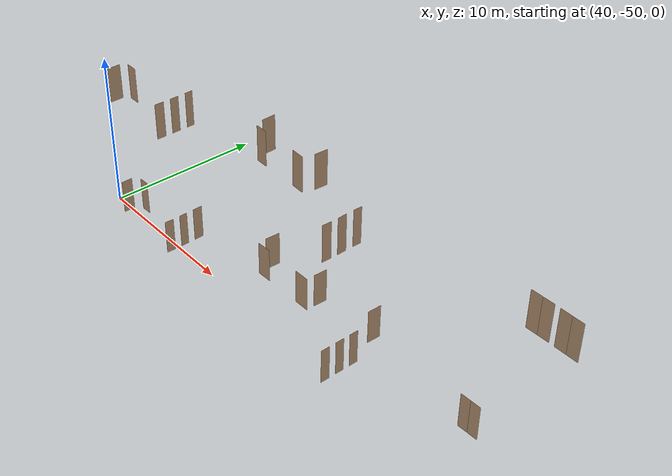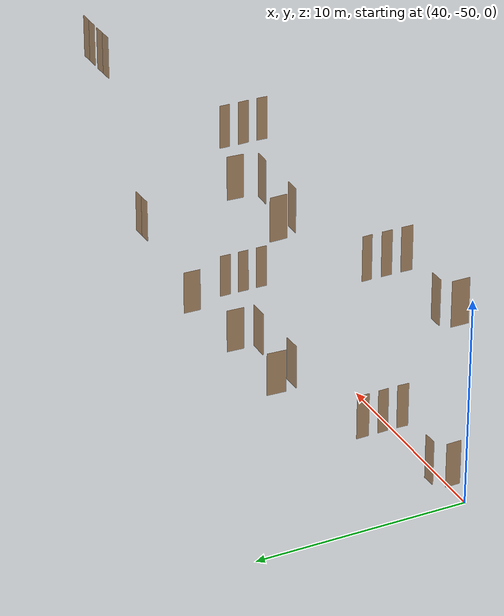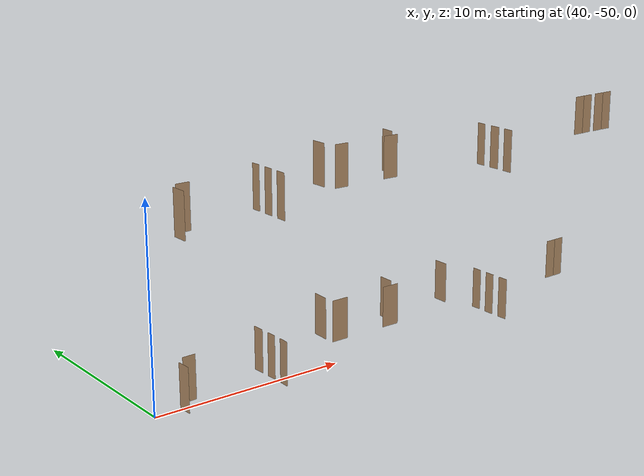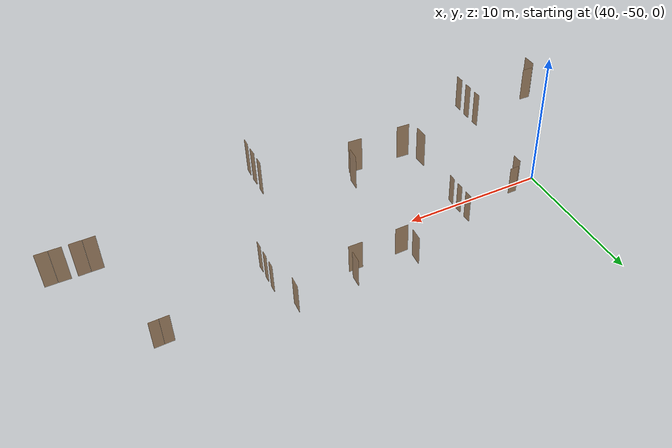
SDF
<sdf version="1.7">
 <world name="sim_world">
  <model name="TD1004CA">
   <pose>41.418329006971035 -50.19107119581413 0.0 0 0 1.5993775933365804</pose>
   <link name="right">
    <pose>0 0 1.11 0 0 0</pose>
    <visual name="right_visual">
     <geometry><box><size>0.7180729002156033 0.03 2.2</size></box></geometry>
     <material>
      <ambient>0.5 0.25 0 0.6</ambient>
      <diffuse>0.5 0.25 0 0.6</diffuse>
      <pbr><metal><metalness>0.0</metalness></metal></pbr>
     </material>
    </visual>
    <collision name="right_collision">
     <geometry><box><size>0.7180729002156033 0.03 2.2</size></box></geometry>
     <surface><contact><collide_bitmask>0x02</collide_bitmask></contact></surface>
    </collision>
    <inertial>
     <mass>50.0</mass>
     <inertia><ixx>20.17041666666667</ixx><iyy>22.315119541766872</iyy><izz>2.1522028751001994</izz></inertia>
    </inertial>
   </link>
   <joint name="right_joint" type="revolute">
    <parent>world</parent>
    <child>right</child>
    <axis><xyz>0 0 1</xyz><limit><lower>0</lower><upper>1.57</upper></limit></axis>
    <pose>0.36403645010780167 0 0 0 0 0</pose>
   </joint>
   <plugin name="register_component" filename="libregister_component.so">
    <component name="Door">
     <v_max_door>0.5</v_max_door>
     <a_max_door>0.3</a_max_door>
     <a_nom_door>0.15</a_nom_door>
     <dx_min_door>0.01</dx_min_door>
     <f_max_door>500.0</f_max_door>
     <ros_interface>true</ros_interface>
     <door name="TD1004CA" type="SwingDoor" left_joint_name="empty_joint" right_joint_name="right_joint"/>
    </component>
   </plugin>
  </model>
  <model name="TD1003CI">
   <pose>42.161714970803274 -49.42168282745601 0.0 0 0 -3.1108152612975006</pose>
   <link name="right">
    <pose>0 0 1.11 0 0 0</pose>
    <visual name="right_visual">
     <geometry><box><size>0.6661358327263901 0.03 2.2</size></box></geometry>
     <material>
      <ambient>0.5 0.25 0 0.6</ambient>
      <diffuse>0.5 0.25 0 0.6</diffuse>
      <pbr><metal><metalness>0.0</metalness></metal></pbr>
     </material>
    </visual>
    <collision name="right_collision">
     <geometry><box><size>0.6661358327263901 0.03 2.2</size></box></geometry>
     <surface><contact><collide_bitmask>0x02</collide_bitmask></contact></surface>
    </collision>
    <inertial>
     <mass>50.0</mass>
     <inertia><ixx>20.17041666666667</ixx><iyy>22.015570615175342</iyy><izz>1.8526539485086717</izz></inertia>
    </inertial>
   </link>
   <joint name="right_joint" type="revolute">
    <parent>world</parent>
    <child>right</child>
    <axis><xyz>0 0 1</xyz><limit><lower>0</lower><upper>1.57</upper></limit></axis>
    <pose>0.33806791636319505 0 0 0 0 0</pose>
   </joint>
   <plugin name="register_component" filename="libregister_component.so">
    <component name="Door">
     <v_max_door>0.5</v_max_door>
     <a_max_door>0.3</a_max_door>
     <a_nom_door>0.15</a_nom_door>
     <dx_min_door>0.01</dx_min_door>
     <f_max_door>500.0</f_max_door>
     <ros_interface>true</ros_interface>
     <door name="TD1003CI" type="SwingDoor" left_joint_name="empty_joint" right_joint_name="right_joint"/>
    </component>
   </plugin>
  </model>
  <model name="bano02">
   <pose>46.556525343689856 -48.4981205128844 0.0 0 0 1.5918249008363818</pose>
   <link name="right">
    <pose>0 0 1.11 0 0 0</pose>
    <visual name="right_visual">
     <geometry><box><size>0.6101771898056049 0.03 2.2</size></box></geometry>
     <material>
      <ambient>0.5 0.25 0 0.6</ambient>
      <diffuse>0.5 0.25 0 0.6</diffuse>
      <pbr><metal><metalness>0.0</metalness></metal></pbr>
     </material>
    </visual>
    <collision name="right_collision">
     <geometry><box><size>0.6101771898056049 0.03 2.2</size></box></geometry>
     <surface><contact><collide_bitmask>0x02</collide_bitmask></contact></surface>
    </collision>
    <inertial>
     <mass>50.0</mass>
     <inertia><ixx>20.17041666666667</ixx><iyy>21.717984178996108</iyy><izz>1.5550675123294382</izz></inertia>
    </inertial>
   </link>
   <joint name="right_joint" type="revolute">
    <parent>world</parent>
    <child>right</child>
    <axis><xyz>0 0 -1</xyz><limit><lower>0</lower><upper>1.57</upper></limit></axis>
    <pose>0.31008859490280244 0 0 0 0 0</pose>
   </joint>
   <plugin name="register_component" filename="libregister_component.so">
    <component name="Door">
     <v_max_door>0.5</v_max_door>
     <a_max_door>0.3</a_max_door>
     <a_nom_door>0.15</a_nom_door>
     <dx_min_door>0.01</dx_min_door>
     <f_max_door>500.0</f_max_door>
     <ros_interface>true</ros_interface>
     <door name="bano02" type="SwingDoor" left_joint_name="empty_joint" right_joint_name="right_joint"/>
    </component>
   </plugin>
  </model>
  <model name="bano03">
   <pose>46.57414458197455 -49.527454369388025 0.0 0 0 1.6131373529821114</pose>
   <link name="right">
    <pose>0 0 1.11 0 0 0</pose>
    <visual name="right_visual">
     <geometry><box><size>0.5144235144770443 0.03 2.2</size></box></geometry>
     <material>
      <ambient>0.5 0.25 0 0.6</ambient>
      <diffuse>0.5 0.25 0 0.6</diffuse>
      <pbr><metal><metalness>0.0</metalness></metal></pbr>
     </material>
    </visual>
    <collision name="right_collision">
     <geometry><box><size>0.5144235144770443 0.03 2.2</size></box></geometry>
     <surface><contact><collide_bitmask>0x02</collide_bitmask></contact></surface>
    </collision>
    <inertial>
     <mass>50.0</mass>
     <inertia><ixx>20.17041666666667</ixx><iyy>21.269298134362145</iyy><izz>1.1063814676954742</izz></inertia>
    </inertial>
   </link>
   <joint name="right_joint" type="revolute">
    <parent>world</parent>
    <child>right</child>
    <axis><xyz>0 0 -1</xyz><limit><lower>0</lower><upper>1.57</upper></limit></axis>
    <pose>0.26221175723852214 0 0 0 0 0</pose>
   </joint>
   <plugin name="register_component" filename="libregister_component.so">
    <component name="Door">
     <v_max_door>0.5</v_max_door>
     <a_max_door>0.3</a_max_door>
     <a_nom_door>0.15</a_nom_door>
     <dx_min_door>0.01</dx_min_door>
     <f_max_door>500.0</f_max_door>
     <ros_interface>true</ros_interface>
     <door name="bano03" type="SwingDoor" left_joint_name="empty_joint" right_joint_name="right_joint"/>
    </component>
   </plugin>
  </model>
  <model name="bano04">
   <pose>46.571922537910616 -50.515388627145 0.0 0 0 1.5235857714449361</pose>
   <link name="right">
    <pose>0 0 1.11 0 0 0</pose>
    <visual name="right_visual">
     <geometry><box><size>0.5545344152907058 0.03 2.2</size></box></geometry>
     <material>
      <ambient>0.5 0.25 0 0.6</ambient>
      <diffuse>0.5 0.25 0 0.6</diffuse>
      <pbr><metal><metalness>0.0</metalness></metal></pbr>
     </material>
    </visual>
    <collision name="right_collision">
     <geometry><box><size>0.5545344152907058 0.03 2.2</size></box></geometry>
     <surface><contact><collide_bitmask>0x02</collide_bitmask></contact></surface>
    </collision>
    <inertial>
     <mass>50.0</mass>
     <inertia><ixx>20.17041666666667</ixx><iyy>21.44795174059086</iyy><izz>1.2850350739241876</izz></inertia>
    </inertial>
   </link>
   <joint name="right_joint" type="revolute">
    <parent>world</parent>
    <child>right</child>
    <axis><xyz>0 0 -1</xyz><limit><lower>0</lower><upper>1.57</upper></limit></axis>
    <pose>0.2822672076453529 0 0 0 0 0</pose>
   </joint>
   <plugin name="register_component" filename="libregister_component.so">
    <component name="Door">
     <v_max_door>0.5</v_max_door>
     <a_max_door>0.3</a_max_door>
     <a_nom_door>0.15</a_nom_door>
     <dx_min_door>0.01</dx_min_door>
     <f_max_door>500.0</f_max_door>
     <ros_interface>true</ros_interface>
     <door name="bano04" type="SwingDoor" left_joint_name="empty_joint" right_joint_name="right_joint"/>
    </component>
   </plugin>
  </model>
  <model name="bano05">
   <pose>52.06670083466635 -47.72443394818039 0.0 0 0 -3.1200870272772754</pose>
   <link name="right">
    <pose>0 0 1.11 0 0 0</pose>
    <visual name="right_visual">
     <geometry><box><size>0.9377301620501713 0.03 2.2</size></box></geometry>
     <material>
      <ambient>0.5 0.25 0 0.6</ambient>
      <diffuse>0.5 0.25 0 0.6</diffuse>
      <pbr><metal><metalness>0.0</metalness></metal></pbr>
     </material>
    </visual>
    <collision name="right_collision">
     <geometry><box><size>0.9377301620501713 0.03 2.2</size></box></geometry>
     <surface><contact><collide_bitmask>0x02</collide_bitmask></contact></surface>
    </collision>
    <inertial>
     <mass>50.0</mass>
     <inertia><ixx>20.17041666666667</ixx><iyy>23.830574403411006</iyy><izz>3.6676577367443364</izz></inertia>
    </inertial>
   </link>
   <joint name="right_joint" type="revolute">
    <parent>world</parent>
    <child>right</child>
    <axis><xyz>0 0 -1</xyz><limit><lower>0</lower><upper>1.57</upper></limit></axis>
    <pose>0.4738650810250857 0 0 0 0 0</pose>
   </joint>
   <plugin name="register_component" filename="libregister_component.so">
    <component name="Door">
     <v_max_door>0.5</v_max_door>
     <a_max_door>0.3</a_max_door>
     <a_nom_door>0.15</a_nom_door>
     <dx_min_door>0.01</dx_min_door>
     <f_max_door>500.0</f_max_door>
     <ros_interface>true</ros_interface>
     <door name="bano05" type="SwingDoor" left_joint_name="empty_joint" right_joint_name="right_joint"/>
    </component>
   </plugin>
  </model>
  <model name="bano06">
   <pose>55.41423266186635 -47.68037463002387 0.0 0 0 0.0023663209530105163</pose>
   <link name="right">
    <pose>0 0 1.11 0 0 0</pose>
    <visual name="right_visual">
     <geometry><box><size>0.976455656863217 0.03 2.2</size></box></geometry>
     <material>
      <ambient>0.5 0.25 0 0.6</ambient>
      <diffuse>0.5 0.25 0 0.6</diffuse>
      <pbr><metal><metalness>0.0</metalness></metal></pbr>
     </material>
    </visual>
    <collision name="right_collision">
     <geometry><box><size>0.976455656863217 0.03 2.2</size></box></geometry>
     <surface><contact><collide_bitmask>0x02</collide_bitmask></contact></surface>
    </collision>
    <inertial>
     <mass>50.0</mass>
     <inertia><ixx>20.17041666666667</ixx><iyy>24.139440207584073</iyy><izz>3.9765235409174027</izz></inertia>
    </inertial>
   </link>
   <joint name="right_joint" type="revolute">
    <parent>world</parent>
    <child>right</child>
    <axis><xyz>0 0 1</xyz><limit><lower>0</lower><upper>1.57</upper></limit></axis>
    <pose>0.4932278284316085 0 0 0 0 0</pose>
   </joint>
   <plugin name="register_component" filename="libregister_component.so">
    <component name="Door">
     <v_max_door>0.5</v_max_door>
     <a_max_door>0.3</a_max_door>
     <a_nom_door>0.15</a_nom_door>
     <dx_min_door>0.01</dx_min_door>
     <f_max_door>500.0</f_max_door>
     <ros_interface>true</ros_interface>
     <door name="bano06" type="SwingDoor" left_joint_name="empty_joint" right_joint_name="right_joint"/>
    </component>
   </plugin>
  </model>
  <model name="TD0008CW">
   <pose>55.8966070053002 -46.72136061243229 0.0 0 0 1.5301015660938087</pose>
   <link name="right">
    <pose>0 0 1.11 0 0 0</pose>
    <visual name="right_visual">
     <geometry><box><size>0.8644361759346737 0.03 2.2</size></box></geometry>
     <material>
      <ambient>0.5 0.25 0 0.6</ambient>
      <diffuse>0.5 0.25 0 0.6</diffuse>
      <pbr><metal><metalness>0.0</metalness></metal></pbr>
     </material>
    </visual>
    <collision name="right_collision">
     <geometry><box><size>0.8644361759346737 0.03 2.2</size></box></geometry>
     <surface><contact><collide_bitmask>0x02</collide_bitmask></contact></surface>
    </collision>
    <inertial>
     <mass>50.0</mass>
     <inertia><ixx>20.17041666666667</ixx><iyy>23.280207926102346</iyy><izz>3.117291259435676</izz></inertia>
    </inertial>
   </link>
   <joint name="right_joint" type="revolute">
    <parent>world</parent>
    <child>right</child>
    <axis><xyz>0 0 1</xyz><limit><lower>0</lower><upper>1.57</upper></limit></axis>
    <pose>0.43721808796733685 0 0 0 0 0</pose>
   </joint>
   <plugin name="register_component" filename="libregister_component.so">
    <component name="Door">
     <v_max_door>0.5</v_max_door>
     <a_max_door>0.3</a_max_door>
     <a_nom_door>0.15</a_nom_door>
     <dx_min_door>0.01</dx_min_door>
     <f_max_door>500.0</f_max_door>
     <ros_interface>true</ros_interface>
     <door name="TD0008CW" type="SwingDoor" left_joint_name="empty_joint" right_joint_name="right_joint"/>
    </component>
   </plugin>
  </model>
  <model name="TD0007CW">
   <pose>51.58219422672672 -46.71441391912132 0.0 0 0 1.5172743729555838</pose>
   <link name="right">
    <pose>0 0 1.11 0 0 0</pose>
    <visual name="right_visual">
     <geometry><box><size>0.9398812216442772 0.03 2.2</size></box></geometry>
     <material>
      <ambient>0.5 0.25 0 0.6</ambient>
      <diffuse>0.5 0.25 0 0.6</diffuse>
      <pbr><metal><metalness>0.0</metalness></metal></pbr>
     </material>
    </visual>
    <collision name="right_collision">
     <geometry><box><size>0.9398812216442772 0.03 2.2</size></box></geometry>
     <surface><contact><collide_bitmask>0x02</collide_bitmask></contact></surface>
    </collision>
    <inertial>
     <mass>50.0</mass>
     <inertia><ixx>20.17041666666667</ixx><iyy>23.847402961664752</iyy><izz>3.6844862949980794</izz></inertia>
    </inertial>
   </link>
   <joint name="right_joint" type="revolute">
    <parent>world</parent>
    <child>right</child>
    <axis><xyz>0 0 -1</xyz><limit><lower>0</lower><upper>1.57</upper></limit></axis>
    <pose>0.4749406108221386 0 0 0 0 0</pose>
   </joint>
   <plugin name="register_component" filename="libregister_component.so">
    <component name="Door">
     <v_max_door>0.5</v_max_door>
     <a_max_door>0.3</a_max_door>
     <a_nom_door>0.15</a_nom_door>
     <dx_min_door>0.01</dx_min_door>
     <f_max_door>500.0</f_max_door>
     <ros_interface>true</ros_interface>
     <door name="TD0007CW" type="SwingDoor" left_joint_name="empty_joint" right_joint_name="right_joint"/>
    </component>
   </plugin>
  </model>
  <model name="bano07">
   <pose>60.06898852289842 -46.43233776989466 0.0 0 0 1.54727733475389</pose>
   <link name="right">
    <pose>0 0 1.11 0 0 0</pose>
    <visual name="right_visual">
     <geometry><box><size>0.8585207486559601 0.03 2.2</size></box></geometry>
     <material>
      <ambient>0.5 0.25 0 0.6</ambient>
      <diffuse>0.5 0.25 0 0.6</diffuse>
      <pbr><metal><metalness>0.0</metalness></metal></pbr>
     </material>
    </visual>
    <collision name="right_collision">
     <geometry><box><size>0.8585207486559601 0.03 2.2</size></box></geometry>
     <surface><contact><collide_bitmask>0x02</collide_bitmask></contact></surface>
    </collision>
    <inertial>
     <mass>50.0</mass>
     <inertia><ixx>20.17041666666667</ixx><iyy>23.237741149469965</iyy><izz>3.0748244828032925</izz></inertia>
    </inertial>
   </link>
   <joint name="right_joint" type="revolute">
    <parent>world</parent>
    <child>right</child>
    <axis><xyz>0 0 1</xyz><limit><lower>0</lower><upper>1.57</upper></limit></axis>
    <pose>0.43426037432798004 0 0 0 0 0</pose>
   </joint>
   <plugin name="register_component" filename="libregister_component.so">
    <component name="Door">
     <v_max_door>0.5</v_max_door>
     <a_max_door>0.3</a_max_door>
     <a_nom_door>0.15</a_nom_door>
     <dx_min_door>0.01</dx_min_door>
     <f_max_door>500.0</f_max_door>
     <ros_interface>true</ros_interface>
     <door name="bano07" type="SwingDoor" left_joint_name="empty_joint" right_joint_name="right_joint"/>
    </component>
   </plugin>
  </model>
  <model name="bano08">
   <pose>60.78976126052451 -48.53715217578514 0.0 0 0 1.5717737241623335</pose>
   <link name="right">
    <pose>0 0 1.11 0 0 0</pose>
    <visual name="right_visual">
     <geometry><box><size>0.5411345257741597 0.03 2.2</size></box></geometry>
     <material>
      <ambient>0.5 0.25 0 0.6</ambient>
      <diffuse>0.5 0.25 0 0.6</diffuse>
      <pbr><metal><metalness>0.0</metalness></metal></pbr>
     </material>
    </visual>
    <collision name="right_collision">
     <geometry><box><size>0.5411345257741597 0.03 2.2</size></box></geometry>
     <surface><contact><collide_bitmask>0x02</collide_bitmask></contact></surface>
    </collision>
    <inertial>
     <mass>50.0</mass>
     <inertia><ixx>20.17041666666667</ixx><iyy>21.386777395770107</iyy><izz>1.2238607291034362</izz></inertia>
    </inertial>
   </link>
   <joint name="right_joint" type="revolute">
    <parent>world</parent>
    <child>right</child>
    <axis><xyz>0 0 1</xyz><limit><lower>0</lower><upper>1.57</upper></limit></axis>
    <pose>0.27556726288707983 0 0 0 0 0</pose>
   </joint>
   <plugin name="register_component" filename="libregister_component.so">
    <component name="Door">
     <v_max_door>0.5</v_max_door>
     <a_max_door>0.3</a_max_door>
     <a_nom_door>0.15</a_nom_door>
     <dx_min_door>0.01</dx_min_door>
     <f_max_door>500.0</f_max_door>
     <ros_interface>true</ros_interface>
     <door name="bano08" type="SwingDoor" left_joint_name="empty_joint" right_joint_name="right_joint"/>
    </component>
   </plugin>
  </model>
  <model name="bano09">
   <pose>60.79003059919892 -49.49870246589414 0.0 0 0 1.5707963267948966</pose>
   <link name="right">
    <pose>0 0 1.11 0 0 0</pose>
    <visual name="right_visual">
     <geometry><box><size>0.5286773488315057 0.03 2.2</size></box></geometry>
     <material>
      <ambient>0.5 0.25 0 0.6</ambient>
      <diffuse>0.5 0.25 0 0.6</diffuse>
      <pbr><metal><metalness>0.0</metalness></metal></pbr>
     </material>
    </visual>
    <collision name="right_collision">
     <geometry><box><size>0.5286773488315057 0.03 2.2</size></box></geometry>
     <surface><contact><collide_bitmask>0x02</collide_bitmask></contact></surface>
    </collision>
    <inertial>
     <mass>50.0</mass>
     <inertia><ixx>20.17041666666667</ixx><iyy>21.331248913197964</iyy><izz>1.16833224653129</izz></inertia>
    </inertial>
   </link>
   <joint name="right_joint" type="revolute">
    <parent>world</parent>
    <child>right</child>
    <axis><xyz>0 0 1</xyz><limit><lower>0</lower><upper>1.57</upper></limit></axis>
    <pose>0.2693386744157529 0 0 0 0 0</pose>
   </joint>
   <plugin name="register_component" filename="libregister_component.so">
    <component name="Door">
     <v_max_door>0.5</v_max_door>
     <a_max_door>0.3</a_max_door>
     <a_nom_door>0.15</a_nom_door>
     <dx_min_door>0.01</dx_min_door>
     <f_max_door>500.0</f_max_door>
     <ros_interface>true</ros_interface>
     <door name="bano09" type="SwingDoor" left_joint_name="empty_joint" right_joint_name="right_joint"/>
    </component>
   </plugin>
  </model>
  <model name="bano010">
   <pose>60.79214041881518 -50.483516884005795 0.0 0 0 1.5782784764305897</pose>
   <link name="right">
    <pose>0 0 1.11 0 0 0</pose>
    <visual name="right_visual">
     <geometry><box><size>0.553966080507234 0.03 2.2</size></box></geometry>
     <material>
      <ambient>0.5 0.25 0 0.6</ambient>
      <diffuse>0.5 0.25 0 0.6</diffuse>
      <pbr><metal><metalness>0.0</metalness></metal></pbr>
     </material>
    </visual>
    <collision name="right_collision">
     <geometry><box><size>0.553966080507234 0.03 2.2</size></box></geometry>
     <surface><contact><collide_bitmask>0x02</collide_bitmask></contact></surface>
    </collision>
    <inertial>
     <mass>50.0</mass>
     <inertia><ixx>20.17041666666667</ixx><iyy>21.44532674313562</iyy><izz>1.2824100764689468</izz></inertia>
    </inertial>
   </link>
   <joint name="right_joint" type="revolute">
    <parent>world</parent>
    <child>right</child>
    <axis><xyz>0 0 1</xyz><limit><lower>0</lower><upper>1.57</upper></limit></axis>
    <pose>0.281983040253617 0 0 0 0 0</pose>
   </joint>
   <plugin name="register_component" filename="libregister_component.so">
    <component name="Door">
     <v_max_door>0.5</v_max_door>
     <a_max_door>0.3</a_max_door>
     <a_nom_door>0.15</a_nom_door>
     <dx_min_door>0.01</dx_min_door>
     <f_max_door>500.0</f_max_door>
     <ros_interface>true</ros_interface>
     <door name="bano010" type="SwingDoor" left_joint_name="empty_joint" right_joint_name="right_joint"/>
    </component>
   </plugin>
  </model>
  <model name="TD0001EC1">
   <pose>68.0815447480926 -47.3850784408613 0.0 0 0 0.026534896190855972</pose>
   <link name="right">
    <pose>0.32252315344996946 0 1.11 0 0 0</pose>
    <visual name="right_visual">
     <geometry><box><size>0.6350463068999389 0.03 2.2</size></box></geometry>
     <material>
      <ambient>0.5 0.25 0 0.6</ambient>
      <diffuse>0.5 0.25 0 0.6</diffuse>
      <pbr><metal><metalness>0.0</metalness></metal></pbr>
     </material>
    </visual>
    <collision name="right_collision">
     <geometry><box><size>0.6350463068999389 0.03 2.2</size></box></geometry>
     <surface><contact><collide_bitmask>0x02</collide_bitmask></contact></surface>
    </collision>
    <inertial>
     <mass>50.0</mass>
     <inertia><ixx>20.17041666666667</ixx><iyy>21.847015882946888</iyy><izz>1.6840992162802142</izz></inertia>
    </inertial>
   </link>
   <joint name="right_joint" type="revolute">
    <parent>world</parent>
    <child>right</child>
    <axis><xyz>0 0 -1</xyz><limit><lower>0</lower><upper>1.57</upper></limit></axis>
    <pose>0.32252315344996946 0 0 0 0 0</pose>
   </joint>
   <link name="left">
    <pose>-0.32252315344996946 0 1.11 0 0 0</pose>
    <visual name="left_visual">
     <geometry><box><size>0.6350463068999389 0.03 2.2</size></box></geometry>
     <material>
      <ambient>0.5 0.25 0 0.6</ambient>
      <diffuse>0.5 0.25 0 0.6</diffuse>
      <pbr><metal><metalness>0.0</metalness></metal></pbr>
     </material>
    </visual>
    <collision name="left_collision">
     <geometry><box><size>0.6350463068999389 0.03 2.2</size></box></geometry>
     <surface><contact><collide_bitmask>0x02</collide_bitmask></contact></surface>
    </collision>
    <inertial>
     <mass>50.0</mass>
     <inertia><ixx>20.17041666666667</ixx><iyy>21.847015882946888</iyy><izz>1.6840992162802142</izz></inertia>
    </inertial>
   </link>
   <joint name="left_joint" type="revolute">
    <parent>world</parent>
    <child>left</child>
    <axis><xyz>0 0 -1</xyz><limit><lower>-1.57</lower><upper>0</upper></limit></axis>
    <pose>-0.32252315344996946 0 0 0 0 0</pose>
   </joint>
   <plugin name="register_component" filename="libregister_component.so">
    <component name="Door">
     <v_max_door>0.5</v_max_door>
     <a_max_door>0.3</a_max_door>
     <a_nom_door>0.15</a_nom_door>
     <dx_min_door>0.01</dx_min_door>
     <f_max_door>500.0</f_max_door>
     <ros_interface>true</ros_interface>
     <door name="TD0001EC1" type="DoubleSwingDoor" left_joint_name="left_joint" right_joint_name="right_joint"/>
    </component>
   </plugin>
  </model>
  <model name="TD1116CT">
   <pose>42.13165229551727 -49.469770444557135 8.0 0 0 -3.1414135882629983</pose>
   <link name="right">
    <pose>0 0 1.11 0 0 0</pose>
    <visual name="right_visual">
     <geometry><box><size>0.7019451403396002 0.03 2.2</size></box></geometry>
     <material>
      <ambient>0.5 0.25 0 0.6</ambient>
      <diffuse>0.5 0.25 0 0.6</diffuse>
      <pbr><metal><metalness>0.0</metalness></metal></pbr>
     </material>
    </visual>
    <collision name="right_collision">
     <geometry><box><size>0.7019451403396002 0.03 2.2</size></box></geometry>
     <surface><contact><collide_bitmask>0x02</collide_bitmask></contact></surface>
    </collision>
    <inertial>
     <mass>50.0</mass>
     <inertia><ixx>20.17041666666667</ixx><iyy>22.21969575019326</iyy><izz>2.056779083526588</izz></inertia>
    </inertial>
   </link>
   <joint name="right_joint" type="revolute">
    <parent>world</parent>
    <child>right</child>
    <axis><xyz>0 0 1</xyz><limit><lower>0</lower><upper>1.57</upper></limit></axis>
    <pose>0.3559725701698001 0 0 0 0 0</pose>
   </joint>
   <plugin name="register_component" filename="libregister_component.so">
    <component name="Door">
     <v_max_door>0.5</v_max_door>
     <a_max_door>0.3</a_max_door>
     <a_nom_door>0.15</a_nom_door>
     <dx_min_door>0.01</dx_min_door>
     <f_max_door>500.0</f_max_door>
     <ros_interface>true</ros_interface>
     <door name="TD1116CT" type="SwingDoor" left_joint_name="empty_joint" right_joint_name="right_joint"/>
    </component>
   </plugin>
  </model>
  <model name="TD0114CW">
   <pose>51.50515808954793 -46.74820920088596 8.0 0 0 1.6056425163225825</pose>
   <link name="right">
    <pose>0 0 1.11 0 0 0</pose>
    <visual name="right_visual">
     <geometry><box><size>0.8454856513248106 0.03 2.2</size></box></geometry>
     <material>
      <ambient>0.5 0.25 0 0.6</ambient>
      <diffuse>0.5 0.25 0 0.6</diffuse>
      <pbr><metal><metalness>0.0</metalness></metal></pbr>
     </material>
    </visual>
    <collision name="right_collision">
     <geometry><box><size>0.8454856513248106 0.03 2.2</size></box></geometry>
     <surface><contact><collide_bitmask>0x02</collide_bitmask></contact></surface>
    </collision>
    <inertial>
     <mass>50.0</mass>
     <inertia><ixx>20.17041666666667</ixx><iyy>23.145191610817253</iyy><izz>2.9822749441505803</izz></inertia>
    </inertial>
   </link>
   <joint name="right_joint" type="revolute">
    <parent>world</parent>
    <child>right</child>
    <axis><xyz>0 0 -1</xyz><limit><lower>0</lower><upper>1.57</upper></limit></axis>
    <pose>0.4277428256624053 0 0 0 0 0</pose>
   </joint>
   <plugin name="register_component" filename="libregister_component.so">
    <component name="Door">
     <v_max_door>0.5</v_max_door>
     <a_max_door>0.3</a_max_door>
     <a_nom_door>0.15</a_nom_door>
     <dx_min_door>0.01</dx_min_door>
     <f_max_door>500.0</f_max_door>
     <ros_interface>true</ros_interface>
     <door name="TD0114CW" type="SwingDoor" left_joint_name="empty_joint" right_joint_name="right_joint"/>
    </component>
   </plugin>
  </model>
  <model name="bano2">
   <pose>46.56346860594233 -48.55060622142908 8.0 0 0 1.6194787439386857</pose>
   <link name="right">
    <pose>0 0 1.11 0 0 0</pose>
    <visual name="right_visual">
     <geometry><box><size>0.47147375781130063 0.03 2.2</size></box></geometry>
     <material>
      <ambient>0.5 0.25 0 0.6</ambient>
      <diffuse>0.5 0.25 0 0.6</diffuse>
      <pbr><metal><metalness>0.0</metalness></metal></pbr>
     </material>
    </visual>
    <collision name="right_collision">
     <geometry><box><size>0.47147375781130063 0.03 2.2</size></box></geometry>
     <surface><contact><collide_bitmask>0x02</collide_bitmask></contact></surface>
    </collision>
    <inertial>
     <mass>50.0</mass>
     <inertia><ixx>20.17041666666667</ixx><iyy>21.092864601269625</iyy><izz>0.9299479346029541</izz></inertia>
    </inertial>
   </link>
   <joint name="right_joint" type="revolute">
    <parent>world</parent>
    <child>right</child>
    <axis><xyz>0 0 -1</xyz><limit><lower>0</lower><upper>1.57</upper></limit></axis>
    <pose>0.24073687890565032 0 0 0 0 0</pose>
   </joint>
   <plugin name="register_component" filename="libregister_component.so">
    <component name="Door">
     <v_max_door>0.5</v_max_door>
     <a_max_door>0.3</a_max_door>
     <a_nom_door>0.15</a_nom_door>
     <dx_min_door>0.01</dx_min_door>
     <f_max_door>500.0</f_max_door>
     <ros_interface>true</ros_interface>
     <door name="bano2" type="SwingDoor" left_joint_name="empty_joint" right_joint_name="right_joint"/>
    </component>
   </plugin>
  </model>
  <model name="bano3">
   <pose>46.57076823740256 -49.51671839086791 8.0 0 0 1.5714524499396092</pose>
   <link name="right">
    <pose>0 0 1.11 0 0 0</pose>
    <visual name="right_visual">
     <geometry><box><size>0.5075620440748119 0.03 2.2</size></box></geometry>
     <material>
      <ambient>0.5 0.25 0 0.6</ambient>
      <diffuse>0.5 0.25 0 0.6</diffuse>
      <pbr><metal><metalness>0.0</metalness></metal></pbr>
     </material>
    </visual>
    <collision name="right_collision">
     <geometry><box><size>0.5075620440748119 0.03 2.2</size></box></geometry>
     <surface><contact><collide_bitmask>0x02</collide_bitmask></contact></surface>
    </collision>
    <inertial>
     <mass>50.0</mass>
     <inertia><ixx>20.17041666666667</ixx><iyy>21.240080119105844</iyy><izz>1.077163452439172</izz></inertia>
    </inertial>
   </link>
   <joint name="right_joint" type="revolute">
    <parent>world</parent>
    <child>right</child>
    <axis><xyz>0 0 -1</xyz><limit><lower>0</lower><upper>1.57</upper></limit></axis>
    <pose>0.25878102203740594 0 0 0 0 0</pose>
   </joint>
   <plugin name="register_component" filename="libregister_component.so">
    <component name="Door">
     <v_max_door>0.5</v_max_door>
     <a_max_door>0.3</a_max_door>
     <a_nom_door>0.15</a_nom_door>
     <dx_min_door>0.01</dx_min_door>
     <f_max_door>500.0</f_max_door>
     <ros_interface>true</ros_interface>
     <door name="bano3" type="SwingDoor" left_joint_name="empty_joint" right_joint_name="right_joint"/>
    </component>
   </plugin>
  </model>
  <model name="bano4">
   <pose>46.563481016345676 -50.50018400156114 8.0 0 0 1.557244461655424</pose>
   <link name="right">
    <pose>0 0 1.11 0 0 0</pose>
    <visual name="right_visual">
     <geometry><box><size>0.5556274960112053 0.03 2.2</size></box></geometry>
     <material>
      <ambient>0.5 0.25 0 0.6</ambient>
      <diffuse>0.5 0.25 0 0.6</diffuse>
      <pbr><metal><metalness>0.0</metalness></metal></pbr>
     </material>
    </visual>
    <collision name="right_collision">
     <geometry><box><size>0.5556274960112053 0.03 2.2</size></box></geometry>
     <surface><contact><collide_bitmask>0x02</collide_bitmask></contact></surface>
    </collision>
    <inertial>
     <mass>50.0</mass>
     <inertia><ixx>20.17041666666667</ixx><iyy>21.45300797634868</iyy><izz>1.2900913096820084</izz></inertia>
    </inertial>
   </link>
   <joint name="right_joint" type="revolute">
    <parent>world</parent>
    <child>right</child>
    <axis><xyz>0 0 -1</xyz><limit><lower>0</lower><upper>1.57</upper></limit></axis>
    <pose>0.28281374800560266 0 0 0 0 0</pose>
   </joint>
   <plugin name="register_component" filename="libregister_component.so">
    <component name="Door">
     <v_max_door>0.5</v_max_door>
     <a_max_door>0.3</a_max_door>
     <a_nom_door>0.15</a_nom_door>
     <dx_min_door>0.01</dx_min_door>
     <f_max_door>500.0</f_max_door>
     <ros_interface>true</ros_interface>
     <door name="bano4" type="SwingDoor" left_joint_name="empty_joint" right_joint_name="right_joint"/>
    </component>
   </plugin>
  </model>
  <model name="bano5">
   <pose>52.148068485913775 -47.74097451939845 8.0 0 0 3.1065786581625146</pose>
   <link name="right">
    <pose>0 0 1.11 0 0 0</pose>
    <visual name="right_visual">
     <geometry><box><size>0.7657234564264961 0.03 2.2</size></box></geometry>
     <material>
      <ambient>0.5 0.25 0 0.6</ambient>
      <diffuse>0.5 0.25 0 0.6</diffuse>
      <pbr><metal><metalness>0.0</metalness></metal></pbr>
     </material>
    </visual>
    <collision name="right_collision">
     <geometry><box><size>0.7657234564264961 0.03 2.2</size></box></geometry>
     <surface><contact><collide_bitmask>0x02</collide_bitmask></contact></surface>
    </collision>
    <inertial>
     <mass>50.0</mass>
     <inertia><ixx>20.17041666666667</ixx><iyy>22.60971838217392</iyy><izz>2.44680171550725</izz></inertia>
    </inertial>
   </link>
   <joint name="right_joint" type="revolute">
    <parent>world</parent>
    <child>right</child>
    <axis><xyz>0 0 -1</xyz><limit><lower>0</lower><upper>1.57</upper></limit></axis>
    <pose>0.38786172821324805 0 0 0 0 0</pose>
   </joint>
   <plugin name="register_component" filename="libregister_component.so">
    <component name="Door">
     <v_max_door>0.5</v_max_door>
     <a_max_door>0.3</a_max_door>
     <a_nom_door>0.15</a_nom_door>
     <dx_min_door>0.01</dx_min_door>
     <f_max_door>500.0</f_max_door>
     <ros_interface>true</ros_interface>
     <door name="bano5" type="SwingDoor" left_joint_name="empty_joint" right_joint_name="right_joint"/>
    </component>
   </plugin>
  </model>
  <model name="bano6">
   <pose>55.234940433910175 -47.778894369654296 8.0 0 0 -0.04549059902802838</pose>
   <link name="right">
    <pose>0 0 1.11 0 0 0</pose>
    <visual name="right_visual">
     <geometry><box><size>0.8297533818517685 0.03 2.2</size></box></geometry>
     <material>
      <ambient>0.5 0.25 0 0.6</ambient>
      <diffuse>0.5 0.25 0 0.6</diffuse>
      <pbr><metal><metalness>0.0</metalness></metal></pbr>
     </material>
    </visual>
    <collision name="right_collision">
     <geometry><box><size>0.8297533818517685 0.03 2.2</size></box></geometry>
     <surface><contact><collide_bitmask>0x02</collide_bitmask></contact></surface>
    </collision>
    <inertial>
     <mass>50.0</mass>
     <inertia><ixx>20.17041666666667</ixx><iyy>23.035377811226866</iyy><izz>2.8724611445601953</izz></inertia>
    </inertial>
   </link>
   <joint name="right_joint" type="revolute">
    <parent>world</parent>
    <child>right</child>
    <axis><xyz>0 0 1</xyz><limit><lower>0</lower><upper>1.57</upper></limit></axis>
    <pose>0.41987669092588426 0 0 0 0 0</pose>
   </joint>
   <plugin name="register_component" filename="libregister_component.so">
    <component name="Door">
     <v_max_door>0.5</v_max_door>
     <a_max_door>0.3</a_max_door>
     <a_nom_door>0.15</a_nom_door>
     <dx_min_door>0.01</dx_min_door>
     <f_max_door>500.0</f_max_door>
     <ros_interface>true</ros_interface>
     <door name="bano6" type="SwingDoor" left_joint_name="empty_joint" right_joint_name="right_joint"/>
    </component>
   </plugin>
  </model>
  <model name="TD0115CW">
   <pose>55.88847397362011 -46.73766025088821 8.0 0 0 1.5145458440551605</pose>
   <link name="right">
    <pose>0 0 1.11 0 0 0</pose>
    <visual name="right_visual">
     <geometry><box><size>0.8030795554057361 0.03 2.2</size></box></geometry>
     <material>
      <ambient>0.5 0.25 0 0.6</ambient>
      <diffuse>0.5 0.25 0 0.6</diffuse>
      <pbr><metal><metalness>0.0</metalness></metal></pbr>
     </material>
    </visual>
    <collision name="right_collision">
     <geometry><box><size>0.8030795554057361 0.03 2.2</size></box></geometry>
     <surface><contact><collide_bitmask>0x02</collide_bitmask></contact></surface>
    </collision>
    <inertial>
     <mass>50.0</mass>
     <inertia><ixx>20.17041666666667</ixx><iyy>22.853903217961147</iyy><izz>2.690986551294478</izz></inertia>
    </inertial>
   </link>
   <joint name="right_joint" type="revolute">
    <parent>world</parent>
    <child>right</child>
    <axis><xyz>0 0 1</xyz><limit><lower>0</lower><upper>1.57</upper></limit></axis>
    <pose>0.40653977770286803 0 0 0 0 0</pose>
   </joint>
   <plugin name="register_component" filename="libregister_component.so">
    <component name="Door">
     <v_max_door>0.5</v_max_door>
     <a_max_door>0.3</a_max_door>
     <a_nom_door>0.15</a_nom_door>
     <dx_min_door>0.01</dx_min_door>
     <f_max_door>500.0</f_max_door>
     <ros_interface>true</ros_interface>
     <door name="TD0115CW" type="SwingDoor" left_joint_name="empty_joint" right_joint_name="right_joint"/>
    </component>
   </plugin>
  </model>
  <model name="bano8">
   <pose>60.781529853885814 -48.5473083155301 8.0 0 0 1.564084700622381</pose>
   <link name="right">
    <pose>0 0 1.11 0 0 0</pose>
    <visual name="right_visual">
     <geometry><box><size>0.5014238975936707 0.03 2.2</size></box></geometry>
     <material>
      <ambient>0.5 0.25 0 0.6</ambient>
      <diffuse>0.5 0.25 0 0.6</diffuse>
      <pbr><metal><metalness>0.0</metalness></metal></pbr>
     </material>
    </visual>
    <collision name="right_collision">
     <geometry><box><size>0.5014238975936707 0.03 2.2</size></box></geometry>
     <surface><contact><collide_bitmask>0x02</collide_bitmask></contact></surface>
    </collision>
    <inertial>
     <mass>50.0</mass>
     <inertia><ixx>20.17041666666667</ixx><iyy>21.21427468782512</iyy><izz>1.0513580211584497</izz></inertia>
    </inertial>
   </link>
   <joint name="right_joint" type="revolute">
    <parent>world</parent>
    <child>right</child>
    <axis><xyz>0 0 1</xyz><limit><lower>0</lower><upper>1.57</upper></limit></axis>
    <pose>0.25571194879683534 0 0 0 0 0</pose>
   </joint>
   <plugin name="register_component" filename="libregister_component.so">
    <component name="Door">
     <v_max_door>0.5</v_max_door>
     <a_max_door>0.3</a_max_door>
     <a_nom_door>0.15</a_nom_door>
     <dx_min_door>0.01</dx_min_door>
     <f_max_door>500.0</f_max_door>
     <ros_interface>true</ros_interface>
     <door name="bano8" type="SwingDoor" left_joint_name="empty_joint" right_joint_name="right_joint"/>
    </component>
   </plugin>
  </model>
  <model name="bano9">
   <pose>60.7830405702094 -49.525576080478196 8.0 0 0 1.6080317512604094</pose>
   <link name="right">
    <pose>0 0 1.11 0 0 0</pose>
    <visual name="right_visual">
     <geometry><box><size>0.5401273478474014 0.03 2.2</size></box></geometry>
     <material>
      <ambient>0.5 0.25 0 0.6</ambient>
      <diffuse>0.5 0.25 0 0.6</diffuse>
      <pbr><metal><metalness>0.0</metalness></metal></pbr>
     </material>
    </visual>
    <collision name="right_collision">
     <geometry><box><size>0.5401273478474014 0.03 2.2</size></box></geometry>
     <surface><contact><collide_bitmask>0x02</collide_bitmask></contact></surface>
    </collision>
    <inertial>
     <mass>50.0</mass>
     <inertia><ixx>20.17041666666667</ixx><iyy>21.38223979955279</iyy><izz>1.2193231328861156</izz></inertia>
    </inertial>
   </link>
   <joint name="right_joint" type="revolute">
    <parent>world</parent>
    <child>right</child>
    <axis><xyz>0 0 1</xyz><limit><lower>0</lower><upper>1.57</upper></limit></axis>
    <pose>0.2750636739237007 0 0 0 0 0</pose>
   </joint>
   <plugin name="register_component" filename="libregister_component.so">
    <component name="Door">
     <v_max_door>0.5</v_max_door>
     <a_max_door>0.3</a_max_door>
     <a_nom_door>0.15</a_nom_door>
     <dx_min_door>0.01</dx_min_door>
     <f_max_door>500.0</f_max_door>
     <ros_interface>true</ros_interface>
     <door name="bano9" type="SwingDoor" left_joint_name="empty_joint" right_joint_name="right_joint"/>
    </component>
   </plugin>
  </model>
  <model name="bano10">
   <pose>60.77464856298866 -50.481522979988085 8.0 0 0 1.5423201626319034</pose>
   <link name="right">
    <pose>0 0 1.11 0 0 0</pose>
    <visual name="right_visual">
     <geometry><box><size>0.5360457845933009 0.03 2.2</size></box></geometry>
     <material>
      <ambient>0.5 0.25 0 0.6</ambient>
      <diffuse>0.5 0.25 0 0.6</diffuse>
      <pbr><metal><metalness>0.0</metalness></metal></pbr>
     </material>
    </visual>
    <collision name="right_collision">
     <geometry><box><size>0.5360457845933009 0.03 2.2</size></box></geometry>
     <surface><contact><collide_bitmask>0x02</collide_bitmask></contact></surface>
    </collision>
    <inertial>
     <mass>50.0</mass>
     <inertia><ixx>20.17041666666667</ixx><iyy>21.36393784658437</iyy><izz>1.2010211799176982</izz></inertia>
    </inertial>
   </link>
   <joint name="right_joint" type="revolute">
    <parent>world</parent>
    <child>right</child>
    <axis><xyz>0 0 1</xyz><limit><lower>0</lower><upper>1.57</upper></limit></axis>
    <pose>0.27302289229665044 0 0 0 0 0</pose>
   </joint>
   <plugin name="register_component" filename="libregister_component.so">
    <component name="Door">
     <v_max_door>0.5</v_max_door>
     <a_max_door>0.3</a_max_door>
     <a_nom_door>0.15</a_nom_door>
     <dx_min_door>0.01</dx_min_door>
     <f_max_door>500.0</f_max_door>
     <ros_interface>true</ros_interface>
     <door name="bano10" type="SwingDoor" left_joint_name="empty_joint" right_joint_name="right_joint"/>
    </component>
   </plugin>
  </model>
  <model name="TD0118CP2">
   <pose>72.41551607728127 -46.65071877677124 8.0 0 0 -0.0022488865674640916</pose>
   <link name="right">
    <pose>0.3351267501694839 0 1.11 0 0 0</pose>
    <visual name="right_visual">
     <geometry><box><size>0.6602535003389678 0.03 2.2</size></box></geometry>
     <material>
      <ambient>0.5 0.25 0 0.6</ambient>
      <diffuse>0.5 0.25 0 0.6</diffuse>
      <pbr><metal><metalness>0.0</metalness></metal></pbr>
     </material>
    </visual>
    <collision name="right_collision">
     <geometry><box><size>0.6602535003389678 0.03 2.2</size></box></geometry>
     <surface><contact><collide_bitmask>0x02</collide_bitmask></contact></surface>
    </collision>
    <inertial>
     <mass>50.0</mass>
     <inertia><ixx>20.17041666666667</ixx><iyy>21.983061186291085</iyy><izz>1.8201445196244141</izz></inertia>
    </inertial>
   </link>
   <joint name="right_joint" type="revolute">
    <parent>world</parent>
    <child>right</child>
    <axis><xyz>0 0 -1</xyz><limit><lower>0</lower><upper>1.57</upper></limit></axis>
    <pose>0.3351267501694839 0 0 0 0 0</pose>
   </joint>
   <link name="left">
    <pose>-0.3351267501694839 0 1.11 0 0 0</pose>
    <visual name="left_visual">
     <geometry><box><size>0.6602535003389678 0.03 2.2</size></box></geometry>
     <material>
      <ambient>0.5 0.25 0 0.6</ambient>
      <diffuse>0.5 0.25 0 0.6</diffuse>
      <pbr><metal><metalness>0.0</metalness></metal></pbr>
     </material>
    </visual>
    <collision name="left_collision">
     <geometry><box><size>0.6602535003389678 0.03 2.2</size></box></geometry>
     <surface><contact><collide_bitmask>0x02</collide_bitmask></contact></surface>
    </collision>
    <inertial>
     <mass>50.0</mass>
     <inertia><ixx>20.17041666666667</ixx><iyy>21.983061186291085</iyy><izz>1.8201445196244141</izz></inertia>
    </inertial>
   </link>
   <joint name="left_joint" type="revolute">
    <parent>world</parent>
    <child>left</child>
    <axis><xyz>0 0 -1</xyz><limit><lower>-1.57</lower><upper>0</upper></limit></axis>
    <pose>-0.3351267501694839 0 0 0 0 0</pose>
   </joint>
   <plugin name="register_component" filename="libregister_component.so">
    <component name="Door">
     <v_max_door>0.5</v_max_door>
     <a_max_door>0.3</a_max_door>
     <a_nom_door>0.15</a_nom_door>
     <dx_min_door>0.01</dx_min_door>
     <f_max_door>500.0</f_max_door>
     <ros_interface>true</ros_interface>
     <door name="TD0118CP2" type="DoubleSwingDoor" left_joint_name="left_joint" right_joint_name="right_joint"/>
    </component>
   </plugin>
  </model>
  <model name="TD0118CP1">
   <pose>70.76829959604194 -46.6575118798179 8.0 0 0 0.017164137838007427</pose>
   <link name="right">
    <pose>0.33436032065809285 0 1.11 0 0 0</pose>
    <visual name="right_visual">
     <geometry><box><size>0.6587206413161857 0.03 2.2</size></box></geometry>
     <material>
      <ambient>0.5 0.25 0 0.6</ambient>
      <diffuse>0.5 0.25 0 0.6</diffuse>
      <pbr><metal><metalness>0.0</metalness></metal></pbr>
     </material>
    </visual>
    <collision name="right_collision">
     <geometry><box><size>0.6587206413161857 0.03 2.2</size></box></geometry>
     <surface><contact><collide_bitmask>0x02</collide_bitmask></contact></surface>
    </collision>
    <inertial>
     <mass>50.0</mass>
     <inertia><ixx>20.17041666666667</ixx><iyy>21.974637013733368</iyy><izz>1.8117203470666958</izz></inertia>
    </inertial>
   </link>
   <joint name="right_joint" type="revolute">
    <parent>world</parent>
    <child>right</child>
    <axis><xyz>0 0 -1</xyz><limit><lower>0</lower><upper>1.57</upper></limit></axis>
    <pose>0.33436032065809285 0 0 0 0 0</pose>
   </joint>
   <link name="left">
    <pose>-0.33436032065809285 0 1.11 0 0 0</pose>
    <visual name="left_visual">
     <geometry><box><size>0.6587206413161857 0.03 2.2</size></box></geometry>
     <material>
      <ambient>0.5 0.25 0 0.6</ambient>
      <diffuse>0.5 0.25 0 0.6</diffuse>
      <pbr><metal><metalness>0.0</metalness></metal></pbr>
     </material>
    </visual>
    <collision name="left_collision">
     <geometry><box><size>0.6587206413161857 0.03 2.2</size></box></geometry>
     <surface><contact><collide_bitmask>0x02</collide_bitmask></contact></surface>
    </collision>
    <inertial>
     <mass>50.0</mass>
     <inertia><ixx>20.17041666666667</ixx><iyy>21.974637013733368</iyy><izz>1.8117203470666958</izz></inertia>
    </inertial>
   </link>
   <joint name="left_joint" type="revolute">
    <parent>world</parent>
    <child>left</child>
    <axis><xyz>0 0 -1</xyz><limit><lower>-1.57</lower><upper>0</upper></limit></axis>
    <pose>-0.33436032065809285 0 0 0 0 0</pose>
   </joint>
   <plugin name="register_component" filename="libregister_component.so">
    <component name="Door">
     <v_max_door>0.5</v_max_door>
     <a_max_door>0.3</a_max_door>
     <a_nom_door>0.15</a_nom_door>
     <dx_min_door>0.01</dx_min_door>
     <f_max_door>500.0</f_max_door>
     <ros_interface>true</ros_interface>
     <door name="TD0118CP1" type="DoubleSwingDoor" left_joint_name="left_joint" right_joint_name="right_joint"/>
    </component>
   </plugin>
  </model>
  <model name="TD1117CI">
   <pose>41.458265439552534 -50.26171059557072 8.0 0 0 1.5729470502308434</pose>
   <link name="right">
    <pose>0 0 1.11 0 0 0</pose>
    <visual name="right_visual">
     <geometry><box><size>0.8438285463336463 0.03 2.2</size></box></geometry>
     <material>
      <ambient>0.5 0.25 0 0.6</ambient>
      <diffuse>0.5 0.25 0 0.6</diffuse>
      <pbr><metal><metalness>0.0</metalness></metal></pbr>
     </material>
    </visual>
    <collision name="right_collision">
     <geometry><box><size>0.8438285463336463 0.03 2.2</size></box></geometry>
     <surface><contact><collide_bitmask>0x02</collide_bitmask></contact></surface>
    </collision>
    <inertial>
     <mass>50.0</mass>
     <inertia><ixx>20.17041666666667</ixx><iyy>23.133527565031486</iyy><izz>2.9706108983648116</izz></inertia>
    </inertial>
   </link>
   <joint name="right_joint" type="revolute">
    <parent>world</parent>
    <child>right</child>
    <axis><xyz>0 0 1</xyz><limit><lower>0</lower><upper>1.57</upper></limit></axis>
    <pose>0.4269142731668232 0 0 0 0 0</pose>
   </joint>
   <plugin name="register_component" filename="libregister_component.so">
    <component name="Door">
     <v_max_door>0.5</v_max_door>
     <a_max_door>0.3</a_max_door>
     <a_nom_door>0.15</a_nom_door>
     <dx_min_door>0.01</dx_min_door>
     <f_max_door>500.0</f_max_door>
     <ros_interface>true</ros_interface>
     <door name="TD1117CI" type="SwingDoor" left_joint_name="empty_joint" right_joint_name="right_joint"/>
    </component>
   </plugin>
  </model>
 </world>
</sdf>
